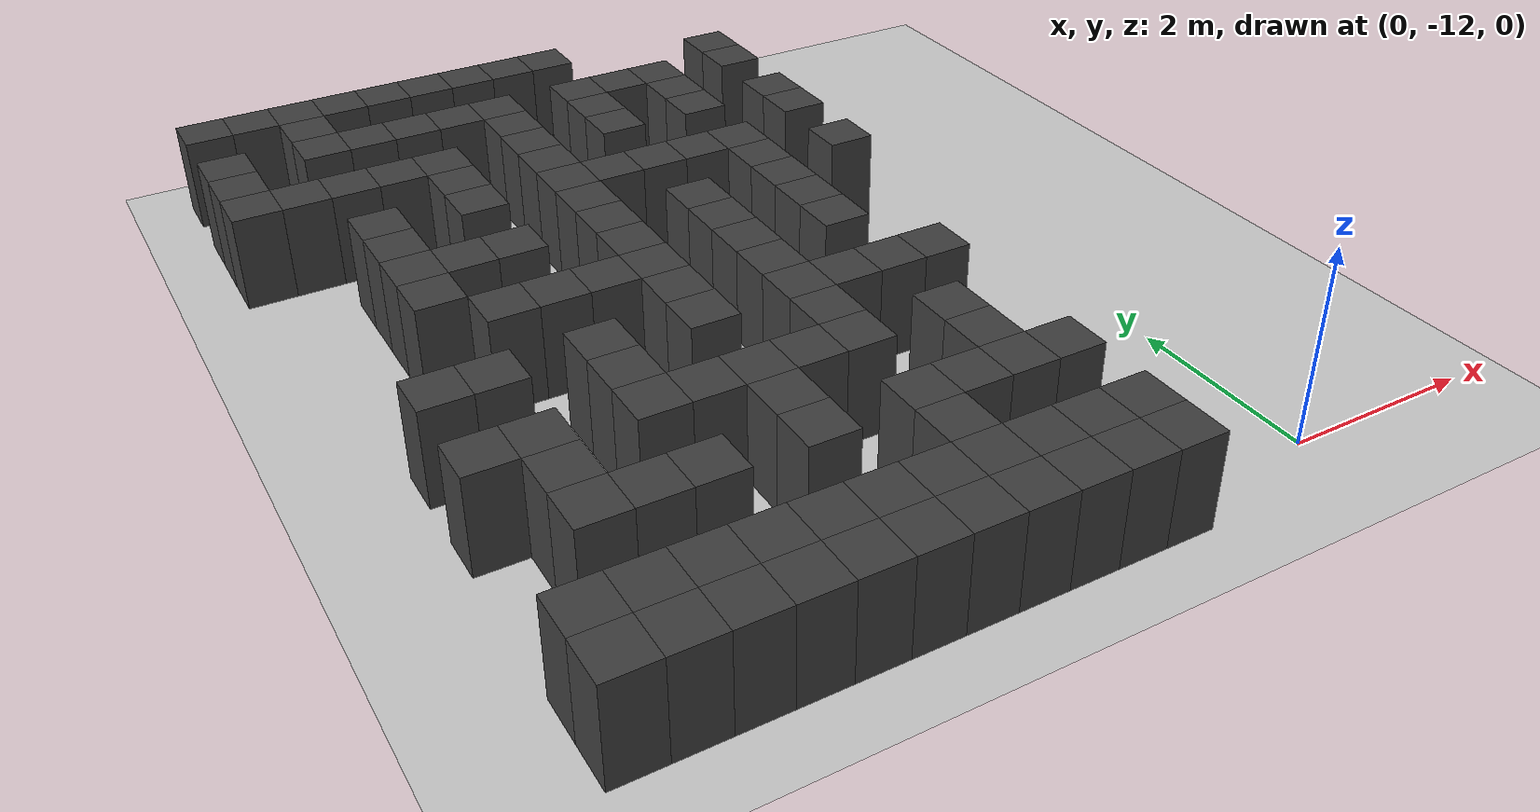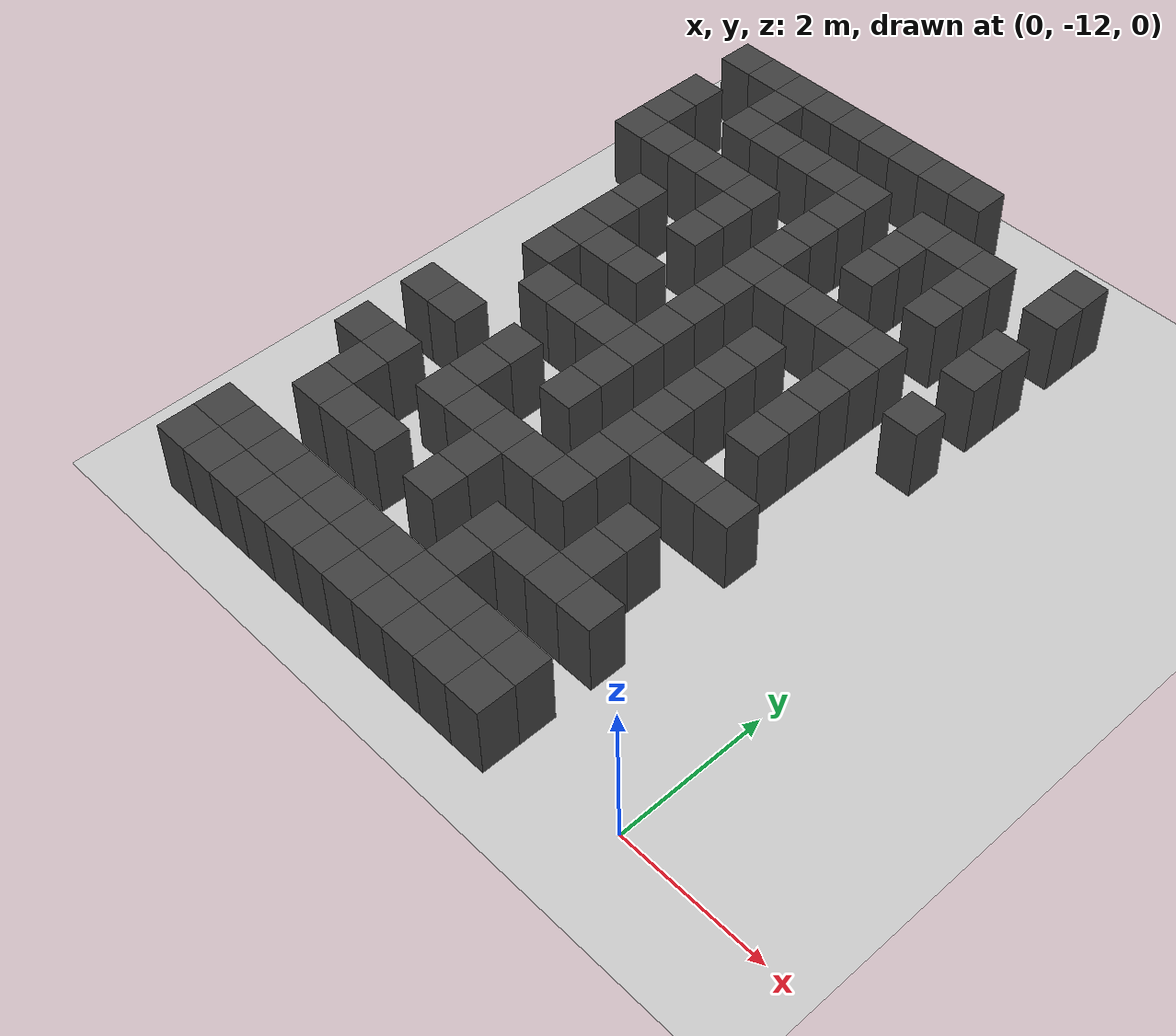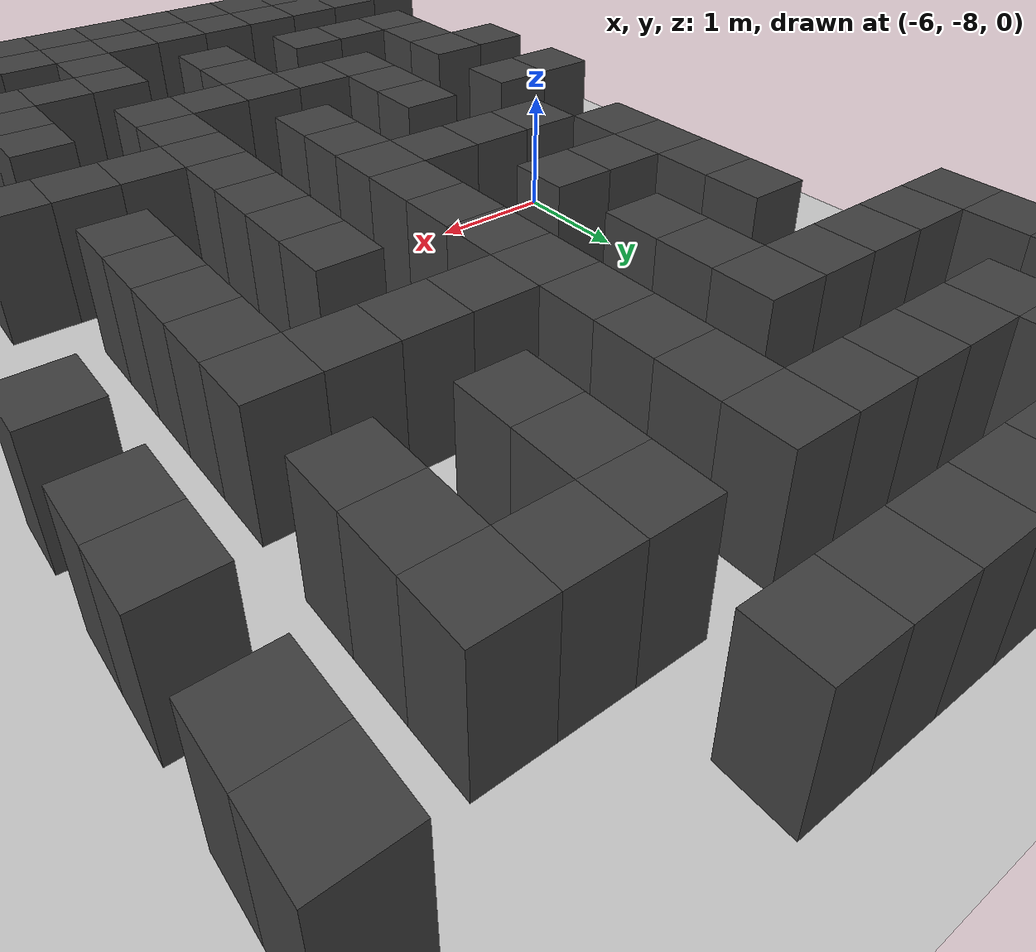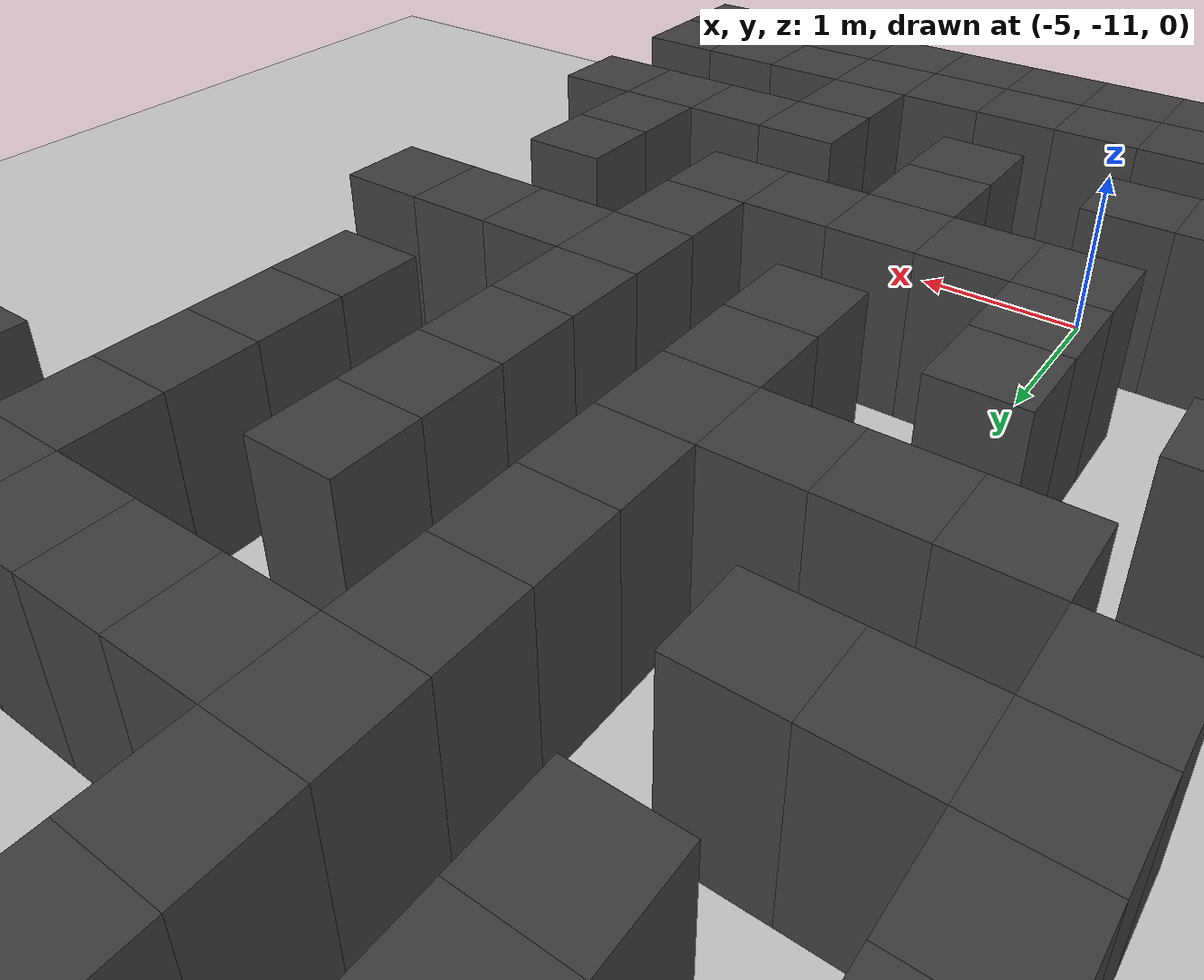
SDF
<sdf version="1.7">
 <world name="map_18596">
  <model name="ground_plane">
   <static>true</static>
   <link name="link">
    <collision name="collision">
     <geometry><plane><normal>0 0 1</normal><size>200 200</size></plane></geometry>
    </collision>
    <visual name="visual">
     <geometry><plane><normal>0 0 1</normal><size>200 200</size></plane></geometry>
     <material><ambient>0.8 0.8 0.8 1</ambient><diffuse>0.8 0.8 0.8 1</diffuse></material>
    </visual>
   </link>
  </model>
  <model name="maze_environment">
   <static>true</static>
   <link name="wall_766">
    <pose>-7.250 -2.750 0.500 0 0 0</pose>
    <collision name="col"><geometry><box><size>0.5 0.5 1.0</size></box></geometry></collision>
    <visual name="vis">
     <geometry><box><size>0.5 0.5 1.0</size></box></geometry>
     <material><ambient>0.15 0.15 0.15 1</ambient><diffuse>0.25 0.25 0.25 1</diffuse></material>
    </visual>
   </link>
   <link name="wall_767">
    <pose>-6.750 -2.750 0.500 0 0 0</pose>
    <collision name="col"><geometry><box><size>0.5 0.5 1.0</size></box></geometry></collision>
    <visual name="vis">
     <geometry><box><size>0.5 0.5 1.0</size></box></geometry>
     <material><ambient>0.15 0.15 0.15 1</ambient><diffuse>0.25 0.25 0.25 1</diffuse></material>
    </visual>
   </link>
   <link name="wall_768">
    <pose>-6.250 -2.750 0.500 0 0 0</pose>
    <collision name="col"><geometry><box><size>0.5 0.5 1.0</size></box></geometry></collision>
    <visual name="vis">
     <geometry><box><size>0.5 0.5 1.0</size></box></geometry>
     <material><ambient>0.15 0.15 0.15 1</ambient><diffuse>0.25 0.25 0.25 1</diffuse></material>
    </visual>
   </link>
   <link name="wall_769">
    <pose>-5.750 -2.750 0.500 0 0 0</pose>
    <collision name="col"><geometry><box><size>0.5 0.5 1.0</size></box></geometry></collision>
    <visual name="vis">
     <geometry><box><size>0.5 0.5 1.0</size></box></geometry>
     <material><ambient>0.15 0.15 0.15 1</ambient><diffuse>0.25 0.25 0.25 1</diffuse></material>
    </visual>
   </link>
   <link name="wall_770">
    <pose>-5.250 -2.750 0.500 0 0 0</pose>
    <collision name="col"><geometry><box><size>0.5 0.5 1.0</size></box></geometry></collision>
    <visual name="vis">
     <geometry><box><size>0.5 0.5 1.0</size></box></geometry>
     <material><ambient>0.15 0.15 0.15 1</ambient><diffuse>0.25 0.25 0.25 1</diffuse></material>
    </visual>
   </link>
   <link name="wall_771">
    <pose>-4.750 -2.750 0.500 0 0 0</pose>
    <collision name="col"><geometry><box><size>0.5 0.5 1.0</size></box></geometry></collision>
    <visual name="vis">
     <geometry><box><size>0.5 0.5 1.0</size></box></geometry>
     <material><ambient>0.15 0.15 0.15 1</ambient><diffuse>0.25 0.25 0.25 1</diffuse></material>
    </visual>
   </link>
   <link name="wall_772">
    <pose>-4.250 -2.750 0.500 0 0 0</pose>
    <collision name="col"><geometry><box><size>0.5 0.5 1.0</size></box></geometry></collision>
    <visual name="vis">
     <geometry><box><size>0.5 0.5 1.0</size></box></geometry>
     <material><ambient>0.15 0.15 0.15 1</ambient><diffuse>0.25 0.25 0.25 1</diffuse></material>
    </visual>
   </link>
   <link name="wall_773">
    <pose>-3.750 -2.750 0.500 0 0 0</pose>
    <collision name="col"><geometry><box><size>0.5 0.5 1.0</size></box></geometry></collision>
    <visual name="vis">
     <geometry><box><size>0.5 0.5 1.0</size></box></geometry>
     <material><ambient>0.15 0.15 0.15 1</ambient><diffuse>0.25 0.25 0.25 1</diffuse></material>
    </visual>
   </link>
   <link name="wall_774">
    <pose>-3.250 -2.750 0.500 0 0 0</pose>
    <collision name="col"><geometry><box><size>0.5 0.5 1.0</size></box></geometry></collision>
    <visual name="vis">
     <geometry><box><size>0.5 0.5 1.0</size></box></geometry>
     <material><ambient>0.15 0.15 0.15 1</ambient><diffuse>0.25 0.25 0.25 1</diffuse></material>
    </visual>
   </link>
   <link name="wall_800">
    <pose>-6.250 -3.250 0.500 0 0 0</pose>
    <collision name="col"><geometry><box><size>0.5 0.5 1.0</size></box></geometry></collision>
    <visual name="vis">
     <geometry><box><size>0.5 0.5 1.0</size></box></geometry>
     <material><ambient>0.15 0.15 0.15 1</ambient><diffuse>0.25 0.25 0.25 1</diffuse></material>
    </visual>
   </link>
   <link name="wall_801">
    <pose>-1.250 -3.250 0.500 0 0 0</pose>
    <collision name="col"><geometry><box><size>0.5 0.5 1.0</size></box></geometry></collision>
    <visual name="vis">
     <geometry><box><size>0.5 0.5 1.0</size></box></geometry>
     <material><ambient>0.15 0.15 0.15 1</ambient><diffuse>0.25 0.25 0.25 1</diffuse></material>
    </visual>
   </link>
   <link name="wall_817">
    <pose>-7.250 -3.750 0.500 0 0 0</pose>
    <collision name="col"><geometry><box><size>0.5 0.5 1.0</size></box></geometry></collision>
    <visual name="vis">
     <geometry><box><size>0.5 0.5 1.0</size></box></geometry>
     <material><ambient>0.15 0.15 0.15 1</ambient><diffuse>0.25 0.25 0.25 1</diffuse></material>
    </visual>
   </link>
   <link name="wall_818">
    <pose>-6.250 -3.750 0.500 0 0 0</pose>
    <collision name="col"><geometry><box><size>0.5 0.5 1.0</size></box></geometry></collision>
    <visual name="vis">
     <geometry><box><size>0.5 0.5 1.0</size></box></geometry>
     <material><ambient>0.15 0.15 0.15 1</ambient><diffuse>0.25 0.25 0.25 1</diffuse></material>
    </visual>
   </link>
   <link name="wall_819">
    <pose>-5.750 -3.750 0.500 0 0 0</pose>
    <collision name="col"><geometry><box><size>0.5 0.5 1.0</size></box></geometry></collision>
    <visual name="vis">
     <geometry><box><size>0.5 0.5 1.0</size></box></geometry>
     <material><ambient>0.15 0.15 0.15 1</ambient><diffuse>0.25 0.25 0.25 1</diffuse></material>
    </visual>
   </link>
   <link name="wall_820">
    <pose>-5.250 -3.750 0.500 0 0 0</pose>
    <collision name="col"><geometry><box><size>0.5 0.5 1.0</size></box></geometry></collision>
    <visual name="vis">
     <geometry><box><size>0.5 0.5 1.0</size></box></geometry>
     <material><ambient>0.15 0.15 0.15 1</ambient><diffuse>0.25 0.25 0.25 1</diffuse></material>
    </visual>
   </link>
   <link name="wall_821">
    <pose>-4.750 -3.750 0.500 0 0 0</pose>
    <collision name="col"><geometry><box><size>0.5 0.5 1.0</size></box></geometry></collision>
    <visual name="vis">
     <geometry><box><size>0.5 0.5 1.0</size></box></geometry>
     <material><ambient>0.15 0.15 0.15 1</ambient><diffuse>0.25 0.25 0.25 1</diffuse></material>
    </visual>
   </link>
   <link name="wall_822">
    <pose>-4.250 -3.750 0.500 0 0 0</pose>
    <collision name="col"><geometry><box><size>0.5 0.5 1.0</size></box></geometry></collision>
    <visual name="vis">
     <geometry><box><size>0.5 0.5 1.0</size></box></geometry>
     <material><ambient>0.15 0.15 0.15 1</ambient><diffuse>0.25 0.25 0.25 1</diffuse></material>
    </visual>
   </link>
   <link name="wall_823">
    <pose>-3.250 -3.750 0.500 0 0 0</pose>
    <collision name="col"><geometry><box><size>0.5 0.5 1.0</size></box></geometry></collision>
    <visual name="vis">
     <geometry><box><size>0.5 0.5 1.0</size></box></geometry>
     <material><ambient>0.15 0.15 0.15 1</ambient><diffuse>0.25 0.25 0.25 1</diffuse></material>
    </visual>
   </link>
   <link name="wall_824">
    <pose>-2.750 -3.750 0.500 0 0 0</pose>
    <collision name="col"><geometry><box><size>0.5 0.5 1.0</size></box></geometry></collision>
    <visual name="vis">
     <geometry><box><size>0.5 0.5 1.0</size></box></geometry>
     <material><ambient>0.15 0.15 0.15 1</ambient><diffuse>0.25 0.25 0.25 1</diffuse></material>
    </visual>
   </link>
   <link name="wall_825">
    <pose>-2.250 -3.750 0.500 0 0 0</pose>
    <collision name="col"><geometry><box><size>0.5 0.5 1.0</size></box></geometry></collision>
    <visual name="vis">
     <geometry><box><size>0.5 0.5 1.0</size></box></geometry>
     <material><ambient>0.15 0.15 0.15 1</ambient><diffuse>0.25 0.25 0.25 1</diffuse></material>
    </visual>
   </link>
   <link name="wall_826">
    <pose>-1.250 -3.750 0.500 0 0 0</pose>
    <collision name="col"><geometry><box><size>0.5 0.5 1.0</size></box></geometry></collision>
    <visual name="vis">
     <geometry><box><size>0.5 0.5 1.0</size></box></geometry>
     <material><ambient>0.15 0.15 0.15 1</ambient><diffuse>0.25 0.25 0.25 1</diffuse></material>
    </visual>
   </link>
   <link name="wall_845">
    <pose>-7.250 -4.250 0.500 0 0 0</pose>
    <collision name="col"><geometry><box><size>0.5 0.5 1.0</size></box></geometry></collision>
    <visual name="vis">
     <geometry><box><size>0.5 0.5 1.0</size></box></geometry>
     <material><ambient>0.15 0.15 0.15 1</ambient><diffuse>0.25 0.25 0.25 1</diffuse></material>
    </visual>
   </link>
   <link name="wall_846">
    <pose>-4.250 -4.250 0.500 0 0 0</pose>
    <collision name="col"><geometry><box><size>0.5 0.5 1.0</size></box></geometry></collision>
    <visual name="vis">
     <geometry><box><size>0.5 0.5 1.0</size></box></geometry>
     <material><ambient>0.15 0.15 0.15 1</ambient><diffuse>0.25 0.25 0.25 1</diffuse></material>
    </visual>
   </link>
   <link name="wall_847">
    <pose>-3.250 -4.250 0.500 0 0 0</pose>
    <collision name="col"><geometry><box><size>0.5 0.5 1.0</size></box></geometry></collision>
    <visual name="vis">
     <geometry><box><size>0.5 0.5 1.0</size></box></geometry>
     <material><ambient>0.15 0.15 0.15 1</ambient><diffuse>0.25 0.25 0.25 1</diffuse></material>
    </visual>
   </link>
   <link name="wall_848">
    <pose>-2.250 -4.250 0.500 0 0 0</pose>
    <collision name="col"><geometry><box><size>0.5 0.5 1.0</size></box></geometry></collision>
    <visual name="vis">
     <geometry><box><size>0.5 0.5 1.0</size></box></geometry>
     <material><ambient>0.15 0.15 0.15 1</ambient><diffuse>0.25 0.25 0.25 1</diffuse></material>
    </visual>
   </link>
   <link name="wall_864">
    <pose>-7.250 -4.750 0.500 0 0 0</pose>
    <collision name="col"><geometry><box><size>0.5 0.5 1.0</size></box></geometry></collision>
    <visual name="vis">
     <geometry><box><size>0.5 0.5 1.0</size></box></geometry>
     <material><ambient>0.15 0.15 0.15 1</ambient><diffuse>0.25 0.25 0.25 1</diffuse></material>
    </visual>
   </link>
   <link name="wall_865">
    <pose>-6.750 -4.750 0.500 0 0 0</pose>
    <collision name="col"><geometry><box><size>0.5 0.5 1.0</size></box></geometry></collision>
    <visual name="vis">
     <geometry><box><size>0.5 0.5 1.0</size></box></geometry>
     <material><ambient>0.15 0.15 0.15 1</ambient><diffuse>0.25 0.25 0.25 1</diffuse></material>
    </visual>
   </link>
   <link name="wall_866">
    <pose>-6.250 -4.750 0.500 0 0 0</pose>
    <collision name="col"><geometry><box><size>0.5 0.5 1.0</size></box></geometry></collision>
    <visual name="vis">
     <geometry><box><size>0.5 0.5 1.0</size></box></geometry>
     <material><ambient>0.15 0.15 0.15 1</ambient><diffuse>0.25 0.25 0.25 1</diffuse></material>
    </visual>
   </link>
   <link name="wall_867">
    <pose>-5.750 -4.750 0.500 0 0 0</pose>
    <collision name="col"><geometry><box><size>0.5 0.5 1.0</size></box></geometry></collision>
    <visual name="vis">
     <geometry><box><size>0.5 0.5 1.0</size></box></geometry>
     <material><ambient>0.15 0.15 0.15 1</ambient><diffuse>0.25 0.25 0.25 1</diffuse></material>
    </visual>
   </link>
   <link name="wall_868">
    <pose>-5.250 -4.750 0.500 0 0 0</pose>
    <collision name="col"><geometry><box><size>0.5 0.5 1.0</size></box></geometry></collision>
    <visual name="vis">
     <geometry><box><size>0.5 0.5 1.0</size></box></geometry>
     <material><ambient>0.15 0.15 0.15 1</ambient><diffuse>0.25 0.25 0.25 1</diffuse></material>
    </visual>
   </link>
   <link name="wall_869">
    <pose>-4.250 -4.750 0.500 0 0 0</pose>
    <collision name="col"><geometry><box><size>0.5 0.5 1.0</size></box></geometry></collision>
    <visual name="vis">
     <geometry><box><size>0.5 0.5 1.0</size></box></geometry>
     <material><ambient>0.15 0.15 0.15 1</ambient><diffuse>0.25 0.25 0.25 1</diffuse></material>
    </visual>
   </link>
   <link name="wall_870">
    <pose>-3.250 -4.750 0.500 0 0 0</pose>
    <collision name="col"><geometry><box><size>0.5 0.5 1.0</size></box></geometry></collision>
    <visual name="vis">
     <geometry><box><size>0.5 0.5 1.0</size></box></geometry>
     <material><ambient>0.15 0.15 0.15 1</ambient><diffuse>0.25 0.25 0.25 1</diffuse></material>
    </visual>
   </link>
   <link name="wall_871">
    <pose>-2.250 -4.750 0.500 0 0 0</pose>
    <collision name="col"><geometry><box><size>0.5 0.5 1.0</size></box></geometry></collision>
    <visual name="vis">
     <geometry><box><size>0.5 0.5 1.0</size></box></geometry>
     <material><ambient>0.15 0.15 0.15 1</ambient><diffuse>0.25 0.25 0.25 1</diffuse></material>
    </visual>
   </link>
   <link name="wall_872">
    <pose>-1.250 -4.750 0.500 0 0 0</pose>
    <collision name="col"><geometry><box><size>0.5 0.5 1.0</size></box></geometry></collision>
    <visual name="vis">
     <geometry><box><size>0.5 0.5 1.0</size></box></geometry>
     <material><ambient>0.15 0.15 0.15 1</ambient><diffuse>0.25 0.25 0.25 1</diffuse></material>
    </visual>
   </link>
   <link name="wall_897">
    <pose>-5.250 -5.250 0.500 0 0 0</pose>
    <collision name="col"><geometry><box><size>0.5 0.5 1.0</size></box></geometry></collision>
    <visual name="vis">
     <geometry><box><size>0.5 0.5 1.0</size></box></geometry>
     <material><ambient>0.15 0.15 0.15 1</ambient><diffuse>0.25 0.25 0.25 1</diffuse></material>
    </visual>
   </link>
   <link name="wall_898">
    <pose>-4.250 -5.250 0.500 0 0 0</pose>
    <collision name="col"><geometry><box><size>0.5 0.5 1.0</size></box></geometry></collision>
    <visual name="vis">
     <geometry><box><size>0.5 0.5 1.0</size></box></geometry>
     <material><ambient>0.15 0.15 0.15 1</ambient><diffuse>0.25 0.25 0.25 1</diffuse></material>
    </visual>
   </link>
   <link name="wall_899">
    <pose>-1.250 -5.250 0.500 0 0 0</pose>
    <collision name="col"><geometry><box><size>0.5 0.5 1.0</size></box></geometry></collision>
    <visual name="vis">
     <geometry><box><size>0.5 0.5 1.0</size></box></geometry>
     <material><ambient>0.15 0.15 0.15 1</ambient><diffuse>0.25 0.25 0.25 1</diffuse></material>
    </visual>
   </link>
   <link name="wall_915">
    <pose>-6.250 -5.750 0.500 0 0 0</pose>
    <collision name="col"><geometry><box><size>0.5 0.5 1.0</size></box></geometry></collision>
    <visual name="vis">
     <geometry><box><size>0.5 0.5 1.0</size></box></geometry>
     <material><ambient>0.15 0.15 0.15 1</ambient><diffuse>0.25 0.25 0.25 1</diffuse></material>
    </visual>
   </link>
   <link name="wall_916">
    <pose>-5.250 -5.750 0.500 0 0 0</pose>
    <collision name="col"><geometry><box><size>0.5 0.5 1.0</size></box></geometry></collision>
    <visual name="vis">
     <geometry><box><size>0.5 0.5 1.0</size></box></geometry>
     <material><ambient>0.15 0.15 0.15 1</ambient><diffuse>0.25 0.25 0.25 1</diffuse></material>
    </visual>
   </link>
   <link name="wall_917">
    <pose>-4.250 -5.750 0.500 0 0 0</pose>
    <collision name="col"><geometry><box><size>0.5 0.5 1.0</size></box></geometry></collision>
    <visual name="vis">
     <geometry><box><size>0.5 0.5 1.0</size></box></geometry>
     <material><ambient>0.15 0.15 0.15 1</ambient><diffuse>0.25 0.25 0.25 1</diffuse></material>
    </visual>
   </link>
   <link name="wall_918">
    <pose>-3.750 -5.750 0.500 0 0 0</pose>
    <collision name="col"><geometry><box><size>0.5 0.5 1.0</size></box></geometry></collision>
    <visual name="vis">
     <geometry><box><size>0.5 0.5 1.0</size></box></geometry>
     <material><ambient>0.15 0.15 0.15 1</ambient><diffuse>0.25 0.25 0.25 1</diffuse></material>
    </visual>
   </link>
   <link name="wall_919">
    <pose>-3.250 -5.750 0.500 0 0 0</pose>
    <collision name="col"><geometry><box><size>0.5 0.5 1.0</size></box></geometry></collision>
    <visual name="vis">
     <geometry><box><size>0.5 0.5 1.0</size></box></geometry>
     <material><ambient>0.15 0.15 0.15 1</ambient><diffuse>0.25 0.25 0.25 1</diffuse></material>
    </visual>
   </link>
   <link name="wall_920">
    <pose>-2.750 -5.750 0.500 0 0 0</pose>
    <collision name="col"><geometry><box><size>0.5 0.5 1.0</size></box></geometry></collision>
    <visual name="vis">
     <geometry><box><size>0.5 0.5 1.0</size></box></geometry>
     <material><ambient>0.15 0.15 0.15 1</ambient><diffuse>0.25 0.25 0.25 1</diffuse></material>
    </visual>
   </link>
   <link name="wall_921">
    <pose>-2.250 -5.750 0.500 0 0 0</pose>
    <collision name="col"><geometry><box><size>0.5 0.5 1.0</size></box></geometry></collision>
    <visual name="vis">
     <geometry><box><size>0.5 0.5 1.0</size></box></geometry>
     <material><ambient>0.15 0.15 0.15 1</ambient><diffuse>0.25 0.25 0.25 1</diffuse></material>
    </visual>
   </link>
   <link name="wall_944">
    <pose>-6.250 -6.250 0.500 0 0 0</pose>
    <collision name="col"><geometry><box><size>0.5 0.5 1.0</size></box></geometry></collision>
    <visual name="vis">
     <geometry><box><size>0.5 0.5 1.0</size></box></geometry>
     <material><ambient>0.15 0.15 0.15 1</ambient><diffuse>0.25 0.25 0.25 1</diffuse></material>
    </visual>
   </link>
   <link name="wall_945">
    <pose>-4.250 -6.250 0.500 0 0 0</pose>
    <collision name="col"><geometry><box><size>0.5 0.5 1.0</size></box></geometry></collision>
    <visual name="vis">
     <geometry><box><size>0.5 0.5 1.0</size></box></geometry>
     <material><ambient>0.15 0.15 0.15 1</ambient><diffuse>0.25 0.25 0.25 1</diffuse></material>
    </visual>
   </link>
   <link name="wall_946">
    <pose>-2.250 -6.250 0.500 0 0 0</pose>
    <collision name="col"><geometry><box><size>0.5 0.5 1.0</size></box></geometry></collision>
    <visual name="vis">
     <geometry><box><size>0.5 0.5 1.0</size></box></geometry>
     <material><ambient>0.15 0.15 0.15 1</ambient><diffuse>0.25 0.25 0.25 1</diffuse></material>
    </visual>
   </link>
   <link name="wall_947">
    <pose>-1.250 -6.250 0.500 0 0 0</pose>
    <collision name="col"><geometry><box><size>0.5 0.5 1.0</size></box></geometry></collision>
    <visual name="vis">
     <geometry><box><size>0.5 0.5 1.0</size></box></geometry>
     <material><ambient>0.15 0.15 0.15 1</ambient><diffuse>0.25 0.25 0.25 1</diffuse></material>
    </visual>
   </link>
   <link name="wall_965">
    <pose>-6.250 -6.750 0.500 0 0 0</pose>
    <collision name="col"><geometry><box><size>0.5 0.5 1.0</size></box></geometry></collision>
    <visual name="vis">
     <geometry><box><size>0.5 0.5 1.0</size></box></geometry>
     <material><ambient>0.15 0.15 0.15 1</ambient><diffuse>0.25 0.25 0.25 1</diffuse></material>
    </visual>
   </link>
   <link name="wall_966">
    <pose>-5.750 -6.750 0.500 0 0 0</pose>
    <collision name="col"><geometry><box><size>0.5 0.5 1.0</size></box></geometry></collision>
    <visual name="vis">
     <geometry><box><size>0.5 0.5 1.0</size></box></geometry>
     <material><ambient>0.15 0.15 0.15 1</ambient><diffuse>0.25 0.25 0.25 1</diffuse></material>
    </visual>
   </link>
   <link name="wall_967">
    <pose>-5.250 -6.750 0.500 0 0 0</pose>
    <collision name="col"><geometry><box><size>0.5 0.5 1.0</size></box></geometry></collision>
    <visual name="vis">
     <geometry><box><size>0.5 0.5 1.0</size></box></geometry>
     <material><ambient>0.15 0.15 0.15 1</ambient><diffuse>0.25 0.25 0.25 1</diffuse></material>
    </visual>
   </link>
   <link name="wall_968">
    <pose>-4.250 -6.750 0.500 0 0 0</pose>
    <collision name="col"><geometry><box><size>0.5 0.5 1.0</size></box></geometry></collision>
    <visual name="vis">
     <geometry><box><size>0.5 0.5 1.0</size></box></geometry>
     <material><ambient>0.15 0.15 0.15 1</ambient><diffuse>0.25 0.25 0.25 1</diffuse></material>
    </visual>
   </link>
   <link name="wall_969">
    <pose>-3.250 -6.750 0.500 0 0 0</pose>
    <collision name="col"><geometry><box><size>0.5 0.5 1.0</size></box></geometry></collision>
    <visual name="vis">
     <geometry><box><size>0.5 0.5 1.0</size></box></geometry>
     <material><ambient>0.15 0.15 0.15 1</ambient><diffuse>0.25 0.25 0.25 1</diffuse></material>
    </visual>
   </link>
   <link name="wall_970">
    <pose>-2.250 -6.750 0.500 0 0 0</pose>
    <collision name="col"><geometry><box><size>0.5 0.5 1.0</size></box></geometry></collision>
    <visual name="vis">
     <geometry><box><size>0.5 0.5 1.0</size></box></geometry>
     <material><ambient>0.15 0.15 0.15 1</ambient><diffuse>0.25 0.25 0.25 1</diffuse></material>
    </visual>
   </link>
   <link name="wall_995">
    <pose>-6.250 -7.250 0.500 0 0 0</pose>
    <collision name="col"><geometry><box><size>0.5 0.5 1.0</size></box></geometry></collision>
    <visual name="vis">
     <geometry><box><size>0.5 0.5 1.0</size></box></geometry>
     <material><ambient>0.15 0.15 0.15 1</ambient><diffuse>0.25 0.25 0.25 1</diffuse></material>
    </visual>
   </link>
   <link name="wall_996">
    <pose>-4.250 -7.250 0.500 0 0 0</pose>
    <collision name="col"><geometry><box><size>0.5 0.5 1.0</size></box></geometry></collision>
    <visual name="vis">
     <geometry><box><size>0.5 0.5 1.0</size></box></geometry>
     <material><ambient>0.15 0.15 0.15 1</ambient><diffuse>0.25 0.25 0.25 1</diffuse></material>
    </visual>
   </link>
   <link name="wall_997">
    <pose>-3.250 -7.250 0.500 0 0 0</pose>
    <collision name="col"><geometry><box><size>0.5 0.5 1.0</size></box></geometry></collision>
    <visual name="vis">
     <geometry><box><size>0.5 0.5 1.0</size></box></geometry>
     <material><ambient>0.15 0.15 0.15 1</ambient><diffuse>0.25 0.25 0.25 1</diffuse></material>
    </visual>
   </link>
   <link name="wall_998">
    <pose>-2.250 -7.250 0.500 0 0 0</pose>
    <collision name="col"><geometry><box><size>0.5 0.5 1.0</size></box></geometry></collision>
    <visual name="vis">
     <geometry><box><size>0.5 0.5 1.0</size></box></geometry>
     <material><ambient>0.15 0.15 0.15 1</ambient><diffuse>0.25 0.25 0.25 1</diffuse></material>
    </visual>
   </link>
   <link name="wall_1015">
    <pose>-5.750 -7.750 0.500 0 0 0</pose>
    <collision name="col"><geometry><box><size>0.5 0.5 1.0</size></box></geometry></collision>
    <visual name="vis">
     <geometry><box><size>0.5 0.5 1.0</size></box></geometry>
     <material><ambient>0.15 0.15 0.15 1</ambient><diffuse>0.25 0.25 0.25 1</diffuse></material>
    </visual>
   </link>
   <link name="wall_1016">
    <pose>-5.250 -7.750 0.500 0 0 0</pose>
    <collision name="col"><geometry><box><size>0.5 0.5 1.0</size></box></geometry></collision>
    <visual name="vis">
     <geometry><box><size>0.5 0.5 1.0</size></box></geometry>
     <material><ambient>0.15 0.15 0.15 1</ambient><diffuse>0.25 0.25 0.25 1</diffuse></material>
    </visual>
   </link>
   <link name="wall_1017">
    <pose>-4.750 -7.750 0.500 0 0 0</pose>
    <collision name="col"><geometry><box><size>0.5 0.5 1.0</size></box></geometry></collision>
    <visual name="vis">
     <geometry><box><size>0.5 0.5 1.0</size></box></geometry>
     <material><ambient>0.15 0.15 0.15 1</ambient><diffuse>0.25 0.25 0.25 1</diffuse></material>
    </visual>
   </link>
   <link name="wall_1018">
    <pose>-4.250 -7.750 0.500 0 0 0</pose>
    <collision name="col"><geometry><box><size>0.5 0.5 1.0</size></box></geometry></collision>
    <visual name="vis">
     <geometry><box><size>0.5 0.5 1.0</size></box></geometry>
     <material><ambient>0.15 0.15 0.15 1</ambient><diffuse>0.25 0.25 0.25 1</diffuse></material>
    </visual>
   </link>
   <link name="wall_1019">
    <pose>-3.250 -7.750 0.500 0 0 0</pose>
    <collision name="col"><geometry><box><size>0.5 0.5 1.0</size></box></geometry></collision>
    <visual name="vis">
     <geometry><box><size>0.5 0.5 1.0</size></box></geometry>
     <material><ambient>0.15 0.15 0.15 1</ambient><diffuse>0.25 0.25 0.25 1</diffuse></material>
    </visual>
   </link>
   <link name="wall_1020">
    <pose>-2.250 -7.750 0.500 0 0 0</pose>
    <collision name="col"><geometry><box><size>0.5 0.5 1.0</size></box></geometry></collision>
    <visual name="vis">
     <geometry><box><size>0.5 0.5 1.0</size></box></geometry>
     <material><ambient>0.15 0.15 0.15 1</ambient><diffuse>0.25 0.25 0.25 1</diffuse></material>
    </visual>
   </link>
   <link name="wall_1047">
    <pose>-4.250 -8.250 0.500 0 0 0</pose>
    <collision name="col"><geometry><box><size>0.5 0.5 1.0</size></box></geometry></collision>
    <visual name="vis">
     <geometry><box><size>0.5 0.5 1.0</size></box></geometry>
     <material><ambient>0.15 0.15 0.15 1</ambient><diffuse>0.25 0.25 0.25 1</diffuse></material>
    </visual>
   </link>
   <link name="wall_1048">
    <pose>-3.250 -8.250 0.500 0 0 0</pose>
    <collision name="col"><geometry><box><size>0.5 0.5 1.0</size></box></geometry></collision>
    <visual name="vis">
     <geometry><box><size>0.5 0.5 1.0</size></box></geometry>
     <material><ambient>0.15 0.15 0.15 1</ambient><diffuse>0.25 0.25 0.25 1</diffuse></material>
    </visual>
   </link>
   <link name="wall_1063">
    <pose>-6.750 -8.750 0.500 0 0 0</pose>
    <collision name="col"><geometry><box><size>0.5 0.5 1.0</size></box></geometry></collision>
    <visual name="vis">
     <geometry><box><size>0.5 0.5 1.0</size></box></geometry>
     <material><ambient>0.15 0.15 0.15 1</ambient><diffuse>0.25 0.25 0.25 1</diffuse></material>
    </visual>
   </link>
   <link name="wall_1064">
    <pose>-6.250 -8.750 0.500 0 0 0</pose>
    <collision name="col"><geometry><box><size>0.5 0.5 1.0</size></box></geometry></collision>
    <visual name="vis">
     <geometry><box><size>0.5 0.5 1.0</size></box></geometry>
     <material><ambient>0.15 0.15 0.15 1</ambient><diffuse>0.25 0.25 0.25 1</diffuse></material>
    </visual>
   </link>
   <link name="wall_1065">
    <pose>-5.250 -8.750 0.500 0 0 0</pose>
    <collision name="col"><geometry><box><size>0.5 0.5 1.0</size></box></geometry></collision>
    <visual name="vis">
     <geometry><box><size>0.5 0.5 1.0</size></box></geometry>
     <material><ambient>0.15 0.15 0.15 1</ambient><diffuse>0.25 0.25 0.25 1</diffuse></material>
    </visual>
   </link>
   <link name="wall_1066">
    <pose>-4.250 -8.750 0.500 0 0 0</pose>
    <collision name="col"><geometry><box><size>0.5 0.5 1.0</size></box></geometry></collision>
    <visual name="vis">
     <geometry><box><size>0.5 0.5 1.0</size></box></geometry>
     <material><ambient>0.15 0.15 0.15 1</ambient><diffuse>0.25 0.25 0.25 1</diffuse></material>
    </visual>
   </link>
   <link name="wall_1067">
    <pose>-3.250 -8.750 0.500 0 0 0</pose>
    <collision name="col"><geometry><box><size>0.5 0.5 1.0</size></box></geometry></collision>
    <visual name="vis">
     <geometry><box><size>0.5 0.5 1.0</size></box></geometry>
     <material><ambient>0.15 0.15 0.15 1</ambient><diffuse>0.25 0.25 0.25 1</diffuse></material>
    </visual>
   </link>
   <link name="wall_1068">
    <pose>-2.750 -8.750 0.500 0 0 0</pose>
    <collision name="col"><geometry><box><size>0.5 0.5 1.0</size></box></geometry></collision>
    <visual name="vis">
     <geometry><box><size>0.5 0.5 1.0</size></box></geometry>
     <material><ambient>0.15 0.15 0.15 1</ambient><diffuse>0.25 0.25 0.25 1</diffuse></material>
    </visual>
   </link>
   <link name="wall_1069">
    <pose>-2.250 -8.750 0.500 0 0 0</pose>
    <collision name="col"><geometry><box><size>0.5 0.5 1.0</size></box></geometry></collision>
    <visual name="vis">
     <geometry><box><size>0.5 0.5 1.0</size></box></geometry>
     <material><ambient>0.15 0.15 0.15 1</ambient><diffuse>0.25 0.25 0.25 1</diffuse></material>
    </visual>
   </link>
   <link name="wall_1070">
    <pose>-1.750 -8.750 0.500 0 0 0</pose>
    <collision name="col"><geometry><box><size>0.5 0.5 1.0</size></box></geometry></collision>
    <visual name="vis">
     <geometry><box><size>0.5 0.5 1.0</size></box></geometry>
     <material><ambient>0.15 0.15 0.15 1</ambient><diffuse>0.25 0.25 0.25 1</diffuse></material>
    </visual>
   </link>
   <link name="wall_1095">
    <pose>-5.250 -9.250 0.500 0 0 0</pose>
    <collision name="col"><geometry><box><size>0.5 0.5 1.0</size></box></geometry></collision>
    <visual name="vis">
     <geometry><box><size>0.5 0.5 1.0</size></box></geometry>
     <material><ambient>0.15 0.15 0.15 1</ambient><diffuse>0.25 0.25 0.25 1</diffuse></material>
    </visual>
   </link>
   <link name="wall_1096">
    <pose>-3.250 -9.250 0.500 0 0 0</pose>
    <collision name="col"><geometry><box><size>0.5 0.5 1.0</size></box></geometry></collision>
    <visual name="vis">
     <geometry><box><size>0.5 0.5 1.0</size></box></geometry>
     <material><ambient>0.15 0.15 0.15 1</ambient><diffuse>0.25 0.25 0.25 1</diffuse></material>
    </visual>
   </link>
   <link name="wall_1113">
    <pose>-6.750 -9.750 0.500 0 0 0</pose>
    <collision name="col"><geometry><box><size>0.5 0.5 1.0</size></box></geometry></collision>
    <visual name="vis">
     <geometry><box><size>0.5 0.5 1.0</size></box></geometry>
     <material><ambient>0.15 0.15 0.15 1</ambient><diffuse>0.25 0.25 0.25 1</diffuse></material>
    </visual>
   </link>
   <link name="wall_1114">
    <pose>-6.250 -9.750 0.500 0 0 0</pose>
    <collision name="col"><geometry><box><size>0.5 0.5 1.0</size></box></geometry></collision>
    <visual name="vis">
     <geometry><box><size>0.5 0.5 1.0</size></box></geometry>
     <material><ambient>0.15 0.15 0.15 1</ambient><diffuse>0.25 0.25 0.25 1</diffuse></material>
    </visual>
   </link>
   <link name="wall_1115">
    <pose>-5.250 -9.750 0.500 0 0 0</pose>
    <collision name="col"><geometry><box><size>0.5 0.5 1.0</size></box></geometry></collision>
    <visual name="vis">
     <geometry><box><size>0.5 0.5 1.0</size></box></geometry>
     <material><ambient>0.15 0.15 0.15 1</ambient><diffuse>0.25 0.25 0.25 1</diffuse></material>
    </visual>
   </link>
   <link name="wall_1116">
    <pose>-4.750 -9.750 0.500 0 0 0</pose>
    <collision name="col"><geometry><box><size>0.5 0.5 1.0</size></box></geometry></collision>
    <visual name="vis">
     <geometry><box><size>0.5 0.5 1.0</size></box></geometry>
     <material><ambient>0.15 0.15 0.15 1</ambient><diffuse>0.25 0.25 0.25 1</diffuse></material>
    </visual>
   </link>
   <link name="wall_1117">
    <pose>-4.250 -9.750 0.500 0 0 0</pose>
    <collision name="col"><geometry><box><size>0.5 0.5 1.0</size></box></geometry></collision>
    <visual name="vis">
     <geometry><box><size>0.5 0.5 1.0</size></box></geometry>
     <material><ambient>0.15 0.15 0.15 1</ambient><diffuse>0.25 0.25 0.25 1</diffuse></material>
    </visual>
   </link>
   <link name="wall_1118">
    <pose>-3.750 -9.750 0.500 0 0 0</pose>
    <collision name="col"><geometry><box><size>0.5 0.5 1.0</size></box></geometry></collision>
    <visual name="vis">
     <geometry><box><size>0.5 0.5 1.0</size></box></geometry>
     <material><ambient>0.15 0.15 0.15 1</ambient><diffuse>0.25 0.25 0.25 1</diffuse></material>
    </visual>
   </link>
   <link name="wall_1119">
    <pose>-3.250 -9.750 0.500 0 0 0</pose>
    <collision name="col"><geometry><box><size>0.5 0.5 1.0</size></box></geometry></collision>
    <visual name="vis">
     <geometry><box><size>0.5 0.5 1.0</size></box></geometry>
     <material><ambient>0.15 0.15 0.15 1</ambient><diffuse>0.25 0.25 0.25 1</diffuse></material>
    </visual>
   </link>
   <link name="wall_1120">
    <pose>-2.250 -9.750 0.500 0 0 0</pose>
    <collision name="col"><geometry><box><size>0.5 0.5 1.0</size></box></geometry></collision>
    <visual name="vis">
     <geometry><box><size>0.5 0.5 1.0</size></box></geometry>
     <material><ambient>0.15 0.15 0.15 1</ambient><diffuse>0.25 0.25 0.25 1</diffuse></material>
    </visual>
   </link>
   <link name="wall_1149">
    <pose>-6.250 -10.250 0.500 0 0 0</pose>
    <collision name="col"><geometry><box><size>0.5 0.5 1.0</size></box></geometry></collision>
    <visual name="vis">
     <geometry><box><size>0.5 0.5 1.0</size></box></geometry>
     <material><ambient>0.15 0.15 0.15 1</ambient><diffuse>0.25 0.25 0.25 1</diffuse></material>
    </visual>
   </link>
   <link name="wall_1150">
    <pose>-4.250 -10.250 0.500 0 0 0</pose>
    <collision name="col"><geometry><box><size>0.5 0.5 1.0</size></box></geometry></collision>
    <visual name="vis">
     <geometry><box><size>0.5 0.5 1.0</size></box></geometry>
     <material><ambient>0.15 0.15 0.15 1</ambient><diffuse>0.25 0.25 0.25 1</diffuse></material>
    </visual>
   </link>
   <link name="wall_1151">
    <pose>-2.250 -10.250 0.500 0 0 0</pose>
    <collision name="col"><geometry><box><size>0.5 0.5 1.0</size></box></geometry></collision>
    <visual name="vis">
     <geometry><box><size>0.5 0.5 1.0</size></box></geometry>
     <material><ambient>0.15 0.15 0.15 1</ambient><diffuse>0.25 0.25 0.25 1</diffuse></material>
    </visual>
   </link>
   <link name="wall_1166">
    <pose>-6.250 -10.750 0.500 0 0 0</pose>
    <collision name="col"><geometry><box><size>0.5 0.5 1.0</size></box></geometry></collision>
    <visual name="vis">
     <geometry><box><size>0.5 0.5 1.0</size></box></geometry>
     <material><ambient>0.15 0.15 0.15 1</ambient><diffuse>0.25 0.25 0.25 1</diffuse></material>
    </visual>
   </link>
   <link name="wall_1167">
    <pose>-5.750 -10.750 0.500 0 0 0</pose>
    <collision name="col"><geometry><box><size>0.5 0.5 1.0</size></box></geometry></collision>
    <visual name="vis">
     <geometry><box><size>0.5 0.5 1.0</size></box></geometry>
     <material><ambient>0.15 0.15 0.15 1</ambient><diffuse>0.25 0.25 0.25 1</diffuse></material>
    </visual>
   </link>
   <link name="wall_1168">
    <pose>-5.250 -10.750 0.500 0 0 0</pose>
    <collision name="col"><geometry><box><size>0.5 0.5 1.0</size></box></geometry></collision>
    <visual name="vis">
     <geometry><box><size>0.5 0.5 1.0</size></box></geometry>
     <material><ambient>0.15 0.15 0.15 1</ambient><diffuse>0.25 0.25 0.25 1</diffuse></material>
    </visual>
   </link>
   <link name="wall_1169">
    <pose>-4.250 -10.750 0.500 0 0 0</pose>
    <collision name="col"><geometry><box><size>0.5 0.5 1.0</size></box></geometry></collision>
    <visual name="vis">
     <geometry><box><size>0.5 0.5 1.0</size></box></geometry>
     <material><ambient>0.15 0.15 0.15 1</ambient><diffuse>0.25 0.25 0.25 1</diffuse></material>
    </visual>
   </link>
   <link name="wall_1170">
    <pose>-3.250 -10.750 0.500 0 0 0</pose>
    <collision name="col"><geometry><box><size>0.5 0.5 1.0</size></box></geometry></collision>
    <visual name="vis">
     <geometry><box><size>0.5 0.5 1.0</size></box></geometry>
     <material><ambient>0.15 0.15 0.15 1</ambient><diffuse>0.25 0.25 0.25 1</diffuse></material>
    </visual>
   </link>
   <link name="wall_1171">
    <pose>-2.750 -10.750 0.500 0 0 0</pose>
    <collision name="col"><geometry><box><size>0.5 0.5 1.0</size></box></geometry></collision>
    <visual name="vis">
     <geometry><box><size>0.5 0.5 1.0</size></box></geometry>
     <material><ambient>0.15 0.15 0.15 1</ambient><diffuse>0.25 0.25 0.25 1</diffuse></material>
    </visual>
   </link>
   <link name="wall_1172">
    <pose>-2.250 -10.750 0.500 0 0 0</pose>
    <collision name="col"><geometry><box><size>0.5 0.5 1.0</size></box></geometry></collision>
    <visual name="vis">
     <geometry><box><size>0.5 0.5 1.0</size></box></geometry>
     <material><ambient>0.15 0.15 0.15 1</ambient><diffuse>0.25 0.25 0.25 1</diffuse></material>
    </visual>
   </link>
   <link name="wall_1173">
    <pose>-1.750 -10.750 0.500 0 0 0</pose>
    <collision name="col"><geometry><box><size>0.5 0.5 1.0</size></box></geometry></collision>
    <visual name="vis">
     <geometry><box><size>0.5 0.5 1.0</size></box></geometry>
     <material><ambient>0.15 0.15 0.15 1</ambient><diffuse>0.25 0.25 0.25 1</diffuse></material>
    </visual>
   </link>
   <link name="wall_1197">
    <pose>-3.250 -11.250 0.500 0 0 0</pose>
    <collision name="col"><geometry><box><size>0.5 0.5 1.0</size></box></geometry></collision>
    <visual name="vis">
     <geometry><box><size>0.5 0.5 1.0</size></box></geometry>
     <material><ambient>0.15 0.15 0.15 1</ambient><diffuse>0.25 0.25 0.25 1</diffuse></material>
    </visual>
   </link>
   <link name="wall_1213">
    <pose>-6.750 -11.750 0.500 0 0 0</pose>
    <collision name="col"><geometry><box><size>0.5 0.5 1.0</size></box></geometry></collision>
    <visual name="vis">
     <geometry><box><size>0.5 0.5 1.0</size></box></geometry>
     <material><ambient>0.15 0.15 0.15 1</ambient><diffuse>0.25 0.25 0.25 1</diffuse></material>
    </visual>
   </link>
   <link name="wall_1214">
    <pose>-6.250 -11.750 0.500 0 0 0</pose>
    <collision name="col"><geometry><box><size>0.5 0.5 1.0</size></box></geometry></collision>
    <visual name="vis">
     <geometry><box><size>0.5 0.5 1.0</size></box></geometry>
     <material><ambient>0.15 0.15 0.15 1</ambient><diffuse>0.25 0.25 0.25 1</diffuse></material>
    </visual>
   </link>
   <link name="wall_1215">
    <pose>-5.750 -11.750 0.500 0 0 0</pose>
    <collision name="col"><geometry><box><size>0.5 0.5 1.0</size></box></geometry></collision>
    <visual name="vis">
     <geometry><box><size>0.5 0.5 1.0</size></box></geometry>
     <material><ambient>0.15 0.15 0.15 1</ambient><diffuse>0.25 0.25 0.25 1</diffuse></material>
    </visual>
   </link>
   <link name="wall_1216">
    <pose>-5.250 -11.750 0.500 0 0 0</pose>
    <collision name="col"><geometry><box><size>0.5 0.5 1.0</size></box></geometry></collision>
    <visual name="vis">
     <geometry><box><size>0.5 0.5 1.0</size></box></geometry>
     <material><ambient>0.15 0.15 0.15 1</ambient><diffuse>0.25 0.25 0.25 1</diffuse></material>
    </visual>
   </link>
   <link name="wall_1217">
    <pose>-4.750 -11.750 0.500 0 0 0</pose>
    <collision name="col"><geometry><box><size>0.5 0.5 1.0</size></box></geometry></collision>
    <visual name="vis">
     <geometry><box><size>0.5 0.5 1.0</size></box></geometry>
     <material><ambient>0.15 0.15 0.15 1</ambient><diffuse>0.25 0.25 0.25 1</diffuse></material>
    </visual>
   </link>
   <link name="wall_1218">
    <pose>-4.250 -11.750 0.500 0 0 0</pose>
    <collision name="col"><geometry><box><size>0.5 0.5 1.0</size></box></geometry></collision>
    <visual name="vis">
     <geometry><box><size>0.5 0.5 1.0</size></box></geometry>
     <material><ambient>0.15 0.15 0.15 1</ambient><diffuse>0.25 0.25 0.25 1</diffuse></material>
    </visual>
   </link>
   <link name="wall_1219">
    <pose>-3.750 -11.750 0.500 0 0 0</pose>
    <collision name="col"><geometry><box><size>0.5 0.5 1.0</size></box></geometry></collision>
    <visual name="vis">
     <geometry><box><size>0.5 0.5 1.0</size></box></geometry>
     <material><ambient>0.15 0.15 0.15 1</ambient><diffuse>0.25 0.25 0.25 1</diffuse></material>
    </visual>
   </link>
   <link name="wall_1220">
    <pose>-3.250 -11.750 0.500 0 0 0</pose>
    <collision name="col"><geometry><box><size>0.5 0.5 1.0</size></box></geometry></collision>
    <visual name="vis">
     <geometry><box><size>0.5 0.5 1.0</size></box></geometry>
     <material><ambient>0.15 0.15 0.15 1</ambient><diffuse>0.25 0.25 0.25 1</diffuse></material>
    </visual>
   </link>
   <link name="wall_1221">
    <pose>-2.750 -11.750 0.500 0 0 0</pose>
    <collision name="col"><geometry><box><size>0.5 0.5 1.0</size></box></geometry></collision>
    <visual name="vis">
     <geometry><box><size>0.5 0.5 1.0</size></box></geometry>
     <material><ambient>0.15 0.15 0.15 1</ambient><diffuse>0.25 0.25 0.25 1</diffuse></material>
    </visual>
   </link>
   <link name="wall_1222">
    <pose>-2.250 -11.750 0.500 0 0 0</pose>
    <collision name="col"><geometry><box><size>0.5 0.5 1.0</size></box></geometry></collision>
    <visual name="vis">
     <geometry><box><size>0.5 0.5 1.0</size></box></geometry>
     <material><ambient>0.15 0.15 0.15 1</ambient><diffuse>0.25 0.25 0.25 1</diffuse></material>
    </visual>
   </link>
   <link name="wall_1223">
    <pose>-1.750 -11.750 0.500 0 0 0</pose>
    <collision name="col"><geometry><box><size>0.5 0.5 1.0</size></box></geometry></collision>
    <visual name="vis">
     <geometry><box><size>0.5 0.5 1.0</size></box></geometry>
     <material><ambient>0.15 0.15 0.15 1</ambient><diffuse>0.25 0.25 0.25 1</diffuse></material>
    </visual>
   </link>
   <link name="wall_1261">
    <pose>-6.750 -12.250 0.500 0 0 0</pose>
    <collision name="col"><geometry><box><size>0.5 0.5 1.0</size></box></geometry></collision>
    <visual name="vis">
     <geometry><box><size>0.5 0.5 1.0</size></box></geometry>
     <material><ambient>0.15 0.15 0.15 1</ambient><diffuse>0.25 0.25 0.25 1</diffuse></material>
    </visual>
   </link>
   <link name="wall_1262">
    <pose>-6.250 -12.250 0.500 0 0 0</pose>
    <collision name="col"><geometry><box><size>0.5 0.5 1.0</size></box></geometry></collision>
    <visual name="vis">
     <geometry><box><size>0.5 0.5 1.0</size></box></geometry>
     <material><ambient>0.15 0.15 0.15 1</ambient><diffuse>0.25 0.25 0.25 1</diffuse></material>
    </visual>
   </link>
   <link name="wall_1263">
    <pose>-5.750 -12.250 0.500 0 0 0</pose>
    <collision name="col"><geometry><box><size>0.5 0.5 1.0</size></box></geometry></collision>
    <visual name="vis">
     <geometry><box><size>0.5 0.5 1.0</size></box></geometry>
     <material><ambient>0.15 0.15 0.15 1</ambient><diffuse>0.25 0.25 0.25 1</diffuse></material>
    </visual>
   </link>
   <link name="wall_1264">
    <pose>-5.250 -12.250 0.500 0 0 0</pose>
    <collision name="col"><geometry><box><size>0.5 0.5 1.0</size></box></geometry></collision>
    <visual name="vis">
     <geometry><box><size>0.5 0.5 1.0</size></box></geometry>
     <material><ambient>0.15 0.15 0.15 1</ambient><diffuse>0.25 0.25 0.25 1</diffuse></material>
    </visual>
   </link>
   <link name="wall_1265">
    <pose>-4.750 -12.250 0.500 0 0 0</pose>
    <collision name="col"><geometry><box><size>0.5 0.5 1.0</size></box></geometry></collision>
    <visual name="vis">
     <geometry><box><size>0.5 0.5 1.0</size></box></geometry>
     <material><ambient>0.15 0.15 0.15 1</ambient><diffuse>0.25 0.25 0.25 1</diffuse></material>
    </visual>
   </link>
   <link name="wall_1266">
    <pose>-4.250 -12.250 0.500 0 0 0</pose>
    <collision name="col"><geometry><box><size>0.5 0.5 1.0</size></box></geometry></collision>
    <visual name="vis">
     <geometry><box><size>0.5 0.5 1.0</size></box></geometry>
     <material><ambient>0.15 0.15 0.15 1</ambient><diffuse>0.25 0.25 0.25 1</diffuse></material>
    </visual>
   </link>
   <link name="wall_1267">
    <pose>-3.750 -12.250 0.500 0 0 0</pose>
    <collision name="col"><geometry><box><size>0.5 0.5 1.0</size></box></geometry></collision>
    <visual name="vis">
     <geometry><box><size>0.5 0.5 1.0</size></box></geometry>
     <material><ambient>0.15 0.15 0.15 1</ambient><diffuse>0.25 0.25 0.25 1</diffuse></material>
    </visual>
   </link>
   <link name="wall_1268">
    <pose>-3.250 -12.250 0.500 0 0 0</pose>
    <collision name="col"><geometry><box><size>0.5 0.5 1.0</size></box></geometry></collision>
    <visual name="vis">
     <geometry><box><size>0.5 0.5 1.0</size></box></geometry>
     <material><ambient>0.15 0.15 0.15 1</ambient><diffuse>0.25 0.25 0.25 1</diffuse></material>
    </visual>
   </link>
   <link name="wall_1269">
    <pose>-2.750 -12.250 0.500 0 0 0</pose>
    <collision name="col"><geometry><box><size>0.5 0.5 1.0</size></box></geometry></collision>
    <visual name="vis">
     <geometry><box><size>0.5 0.5 1.0</size></box></geometry>
     <material><ambient>0.15 0.15 0.15 1</ambient><diffuse>0.25 0.25 0.25 1</diffuse></material>
    </visual>
   </link>
   <link name="wall_1270">
    <pose>-2.250 -12.250 0.500 0 0 0</pose>
    <collision name="col"><geometry><box><size>0.5 0.5 1.0</size></box></geometry></collision>
    <visual name="vis">
     <geometry><box><size>0.5 0.5 1.0</size></box></geometry>
     <material><ambient>0.15 0.15 0.15 1</ambient><diffuse>0.25 0.25 0.25 1</diffuse></material>
    </visual>
   </link>
   <link name="wall_1271">
    <pose>-1.750 -12.250 0.500 0 0 0</pose>
    <collision name="col"><geometry><box><size>0.5 0.5 1.0</size></box></geometry></collision>
    <visual name="vis">
     <geometry><box><size>0.5 0.5 1.0</size></box></geometry>
     <material><ambient>0.15 0.15 0.15 1</ambient><diffuse>0.25 0.25 0.25 1</diffuse></material>
    </visual>
   </link>
  </model>
 </world>
</sdf>
